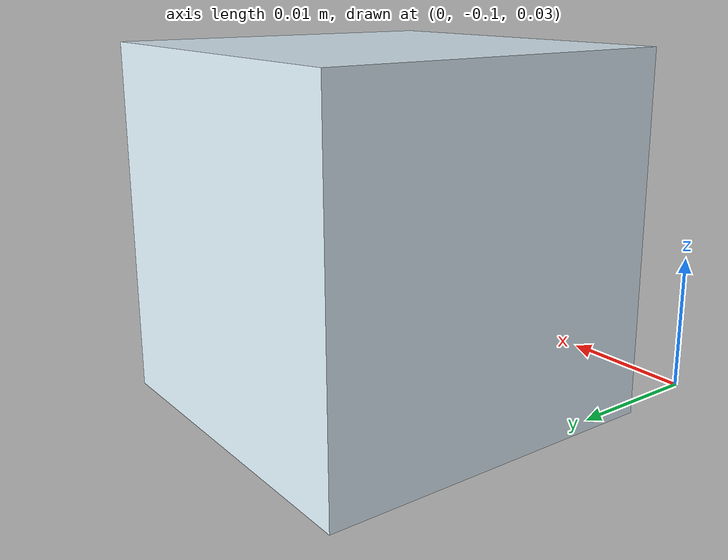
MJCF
<mujoco model="montessori_object_3">
    <compiler angle="radian" meshdir="." autolimits="true" inertiafromgeom="true"/>
    <default>
        <default class="montessori_object_3_collision">
            <geom rgba="0.87 0.94 0.98 1.0"/>
        </default>
    </default>
    <worldbody>
        <body name="montessori_object_3" pos="0.0205 -0.087 0.04" quat="1 0 0 0">
            <freejoint/>
            <inertial mass="0.007762392051517963" pos="0.0 0.0 0.0" quat="1.0 0.0 0.0 0.0" diaginertia="5.071946702628338e-07 5.071946702628338e-07 5.071946702628338e-07"/>
			<geom name="MontessoriObject3" type="box" size="0.015 0.015 0.015" class="montessori_object_3_collision"/>
        </body>
    </worldbody>
</mujoco>
